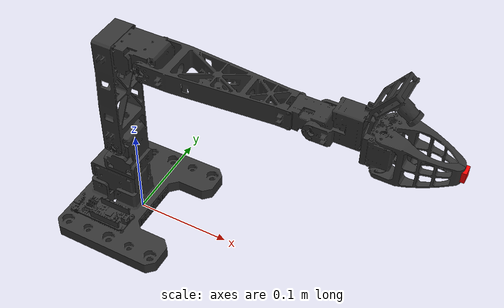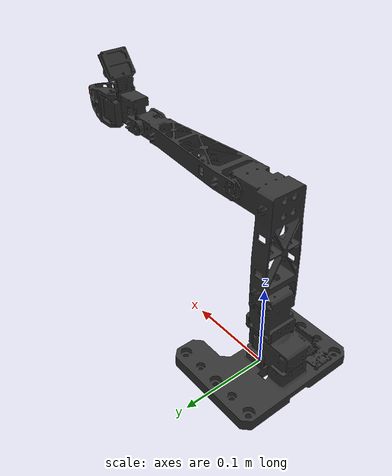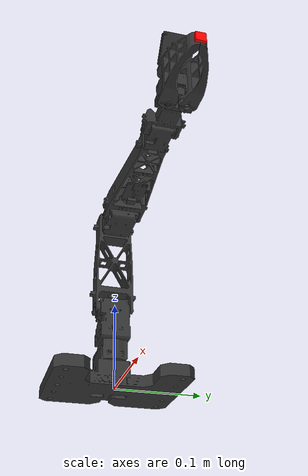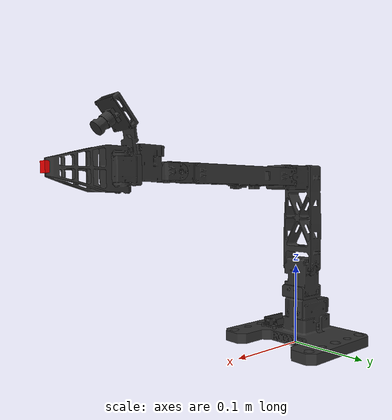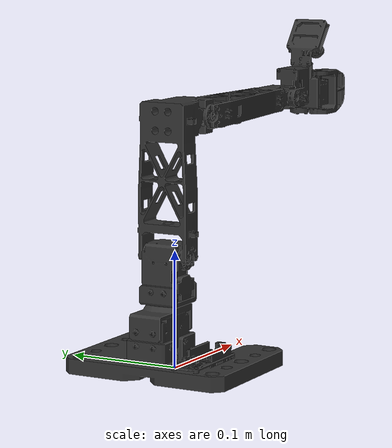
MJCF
<mujoco model="omx_f">
  <compiler angle="radian" meshdir="../../"/>
  <option cone="elliptic" impratio="10"/>
  <!-- Actuator gains and passive joint dynamics are approximate simulation parameters.
       Hardware motion profiles are not modeled; force limits follow published specifications unless noted. -->
  <default>
    <default class="XL430-W250-T">
      <position kp="50" forcerange="-1.5 1.5" dampratio="1.3"/>
    </default>
    <default class="XL330-M288-T">
      <position kp="50" forcerange="-0.52 0.52" dampratio="1"/>
    </default>
  </default>
  <asset>
    <mesh name="follower_01_base" content_type="model/stl" file="meshes/omx_f/follower_01_base.stl" scale="0.001 0.001 0.001"/>
    <mesh name="follower_02_base_tilt_Revised" content_type="model/stl" file="meshes/omx_f/follower_02_base_tilt_Revised.stl" scale="0.001 0.001 0.001"/>
    <mesh name="follower_03_middle_verticle" content_type="model/stl" file="meshes/omx_f/follower_03_middle_verticle.stl" scale="0.001 0.001 0.001"/>
    <mesh name="follower_04_middle_horizontal" content_type="model/stl" file="meshes/omx_f/follower_04_middle_horizontal.stl" scale="0.001 0.001 0.001"/>
    <mesh name="follower_05_tip" content_type="model/stl" file="meshes/omx_f/follower_05_tip.stl" scale="0.001 0.001 0.001"/>
    <mesh name="follower_06_pan_Revised" content_type="model/stl" file="meshes/omx_f/follower_06_pan_Revised.stl" scale="0.001 0.001 0.001"/>
    <mesh name="follower_07_gripper_motorized" content_type="model/stl" file="meshes/omx_f/follower_07_gripper_motorized.stl" scale="0.001 0.001 0.001"/>
    <mesh name="follower_08_gripper_gear" content_type="model/stl" file="meshes/omx_f/follower_08_gripper_gear.stl" scale="0.001 0.001 0.001"/>
  </asset>
  <worldbody>
    <body name="link0">
      <inertial pos="-0.0144125 -0.00314989 0.0192766" quat="0.551577 0.535903 -0.45697 0.446934" mass="0.223891" diaginertia="0.000459312 0.000353346 0.000219325"/>
      <geom type="mesh" contype="0" conaffinity="0" group="2" density="0" rgba="0.2 0.2 0.2 1" mesh="follower_01_base"/>
      <geom type="mesh" rgba="0.2 0.2 0.2 1" mesh="follower_01_base" group="3" density="0"/>
      <body name="link1" pos="-0.01125 0 0.034">
        <inertial pos="-6.22362e-06 0.000604923 0.0474188" quat="0.999751 -0.0195068 -0.000523577 -0.0108265" mass="0.065987" diaginertia="2.17318e-05 2.13661e-05 1.16432e-05"/>
        <joint name="joint1" pos="0 0 0" axis="0 0 1" range="-6.28319 6.28319" actuatorfrcrange="-1000 1000" damping="0.2" armature="0.005" frictionloss="0.1"/>
        <geom type="mesh" contype="0" conaffinity="0" group="2" density="0" rgba="0.2 0.2 0.2 1" mesh="follower_02_base_tilt_Revised"/>
        <geom type="mesh" rgba="0.2 0.2 0.2 1" mesh="follower_02_base_tilt_Revised" group="3" density="0"/>
        <body name="link2" pos="0 0 0.0635">
          <inertial pos="0.0180899 0.000297788 0.0990055" quat="0.687559 0.105106 0.119393 0.708492" mass="0.0872215" diaginertia="0.000120923 0.000110522 3.4491e-05"/>
          <joint name="joint2" pos="0 0 0" axis="0 1 0" range="-6.28319 6.28319" actuatorfrcrange="-1000 1000" damping="0.2" armature="0.005" frictionloss="0.1"/>
          <geom type="mesh" contype="0" conaffinity="0" group="2" density="0" rgba="0.2 0.2 0.2 1" mesh="follower_03_middle_verticle"/>
          <geom type="mesh" rgba="0.2 0.2 0.2 1" mesh="follower_03_middle_verticle" group="3" density="0"/>
          <body name="link3" pos="0.0415 0 0.11315">
            <inertial pos="0.0873986 0.000413101 -0.00358292" quat="0.0308724 0.692831 0.0315908 0.719746" mass="0.0837591" diaginertia="0.000231019 0.000226024 1.48898e-05"/>
            <joint name="joint3" pos="0 0 0" axis="0 1 0" range="-6.28319 6.28319" actuatorfrcrange="-1000 1000" damping="0.2" armature="0.005" frictionloss="0.1"/>
            <geom type="mesh" contype="0" conaffinity="0" group="2" density="0" rgba="0.2 0.2 0.2 1" mesh="follower_04_middle_horizontal"/>
            <geom type="mesh" rgba="0.2 0.2 0.2 1" mesh="follower_04_middle_horizontal" group="3" density="0"/>
            <body name="link4" pos="0.162 0 0">
              <inertial pos="0.023235 6.77354e-05 0.00597613" quat="0.608881 0.373182 0.376257 0.590279" mass="0.0299751" diaginertia="7.09955e-06 6.69023e-06 4.72073e-06"/>
              <joint name="joint4" pos="0 0 0" axis="0 1 0" range="-6.28319 6.28319" actuatorfrcrange="-1000 1000" damping="0.05" armature="0.001" frictionloss="0.1"/>
              <geom type="mesh" contype="0" conaffinity="0" group="2" density="0" rgba="0.2 0.2 0.2 1" mesh="follower_05_tip"/>
              <geom type="mesh" rgba="0.2 0.2 0.2 1" mesh="follower_05_tip" group="3" density="0"/>
              <body name="link5" pos="0.0287 0 0">
                <inertial pos="0.0280724 2.41359e-05 0.0135289" quat="0.996143 0.000396881 0.0854137 -0.0200656" mass="0.0438109" diaginertia="2.42036e-05 2.32357e-05 6.67277e-06"/>
                <joint name="joint5" pos="0 0 0" axis="1 0 0" range="-6.28319 6.28319" actuatorfrcrange="-1000 1000" damping="0.05" armature="0.001" frictionloss="0.1"/>
                <geom type="mesh" contype="0" conaffinity="0" group="2" density="0" rgba="0.2 0.2 0.2 1" mesh="follower_06_pan_Revised"/>
                <geom type="mesh" rgba="0.2 0.2 0.2 1" mesh="follower_06_pan_Revised" group="3" density="0"/>
                <body name="end_effector_link" pos="0.09193 -0.0016 0">
                  <geom size="0.005 0.005 0.005" type="box" contype="0" conaffinity="0" group="2" density="0" rgba="1 0 0 1"/>
                </body>
                <body name="link6" pos="0.0295 0.0075 0">
                  <inertial pos="0.0161646 0.0012731 0.000272916" quat="0.498852 0.517636 0.496678 0.486324" mass="0.0120907" diaginertia="6.87819e-06 4.69576e-06 2.70194e-06"/>
                  <joint name="gripper_joint_1" pos="0 0 0" axis="0 0 1" range="0 1.745329" actuatorfrcrange="-1000 1000" damping="0.01" armature="0.0003"/>
                  <geom type="mesh" contype="0" conaffinity="0" group="2" density="0" rgba="0.2 0.2 0.2 1" mesh="follower_07_gripper_motorized"/>
                  <geom type="mesh" rgba="0.2 0.2 0.2 1" mesh="follower_07_gripper_motorized" group="3" density="0"/>
                </body>
                <body name="link7" pos="0.0295 -0.0108 0">
                  <inertial pos="0.0161646 0.0012731 0.000272916" quat="0.498852 0.517636 0.496678 0.486324" mass="0.0120907" diaginertia="6.87819e-06 4.69576e-06 2.70194e-06"/>
                  <joint name="gripper_joint_2" pos="0 0 0" axis="0 0 1" range="-1.745329 0" actuatorfrcrange="-1000 1000" damping="0.01" armature="0.0003"/>
                  <geom type="mesh" contype="0" conaffinity="0" group="2" density="0" rgba="0.2 0.2 0.2 1" mesh="follower_08_gripper_gear"/>
                  <geom type="mesh" rgba="0.2 0.2 0.2 1" mesh="follower_08_gripper_gear" group="3" density="0"/>
                </body>
              </body>
            </body>
          </body>
        </body>
      </body>
    </body>
  </worldbody>
  <actuator>
    <position name="joint1" joint="joint1" class="XL430-W250-T" inheritrange="1"/>
    <position name="joint2" joint="joint2" class="XL430-W250-T" inheritrange="1"/>
    <position name="joint3" joint="joint3" class="XL430-W250-T" inheritrange="1"/>
    <position name="joint4" joint="joint4" class="XL330-M288-T" inheritrange="1"/>
    <position name="joint5" joint="joint5" class="XL330-M288-T" inheritrange="1"/>
    <!-- Approximate torque at the configured current limit. -->
    <position name="gripper_joint_1" joint="gripper_joint_1" class="XL330-M288-T" inheritrange="1" forcerange="-0.2 0.2" dampratio="2"/>
  </actuator>
  <contact>
    <!-- Adjacent or overlapping internal collision meshes -->
    <exclude body1="link0" body2="link1"/>
    <exclude body1="link5" body2="link6"/>
    <exclude body1="link5" body2="link7"/>
    <exclude body1="link6" body2="link7"/>
  </contact>
  <equality>
    <!-- Mimic joint constraints. -->
    <joint joint1="gripper_joint_2" joint2="gripper_joint_1" polycoef="0 -1 0 0 0"/>
  </equality>
  <keyframe>
    <key name="home" qpos="0 0 0 0 0 0 0" ctrl="0 0 0 0 0 0"/>
  </keyframe>
</mujoco>
